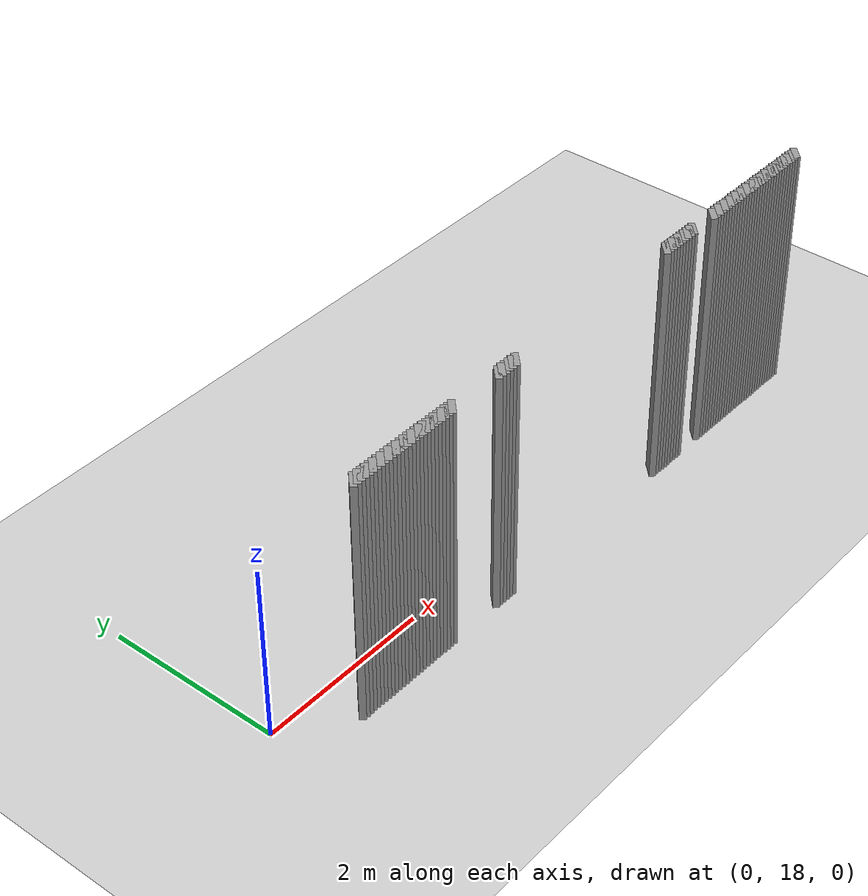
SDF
<sdf version="1.5">
 <world name="default">
  <include><uri>model://ground_plane</uri></include>
  <include><uri>model://sun</uri></include>
  <model name="grey_wall_1">
   <static>1</static>
   <link name="link">
    <pose>0.75 17.55  1.4 0 0 -0.7853981633974194</pose>
    <collision name="collision">
     <geometry><box><size>0.07071067811865277 .2  2.8</size></box></geometry>
    </collision>
    <visual name="visual">
     <cast_shadows>0</cast_shadows>
     <geometry><box><size>0.07071067811865277 .2  2.8</size></box></geometry>
     <material>
      <script>
       <uri>model://grey_wall/materials/scripts</uri>
       <uri>model://grey_wall/materials/textures</uri>
       <name>vrc/grey_wall</name>
      </script>
     </material>
    </visual>
   </link>
  </model>
  <model name="grey_wall_2">
   <static>1</static>
   <link name="link">
    <pose>0.8 17.55  1.4 0 0 -0.7853981633974194</pose>
    <collision name="collision">
     <geometry><box><size>0.07071067811865277 .2  2.8</size></box></geometry>
    </collision>
    <visual name="visual">
     <cast_shadows>0</cast_shadows>
     <geometry><box><size>0.07071067811865277 .2  2.8</size></box></geometry>
     <material>
      <script>
       <uri>model://grey_wall/materials/scripts</uri>
       <uri>model://grey_wall/materials/textures</uri>
       <name>vrc/grey_wall</name>
      </script>
     </material>
    </visual>
   </link>
  </model>
  <model name="grey_wall_3">
   <static>1</static>
   <link name="link">
    <pose>0.8500000000000001 17.55  1.4 0 0 -0.7853981633974194</pose>
    <collision name="collision">
     <geometry><box><size>0.07071067811865277 .2  2.8</size></box></geometry>
    </collision>
    <visual name="visual">
     <cast_shadows>0</cast_shadows>
     <geometry><box><size>0.07071067811865277 .2  2.8</size></box></geometry>
     <material>
      <script>
       <uri>model://grey_wall/materials/scripts</uri>
       <uri>model://grey_wall/materials/textures</uri>
       <name>vrc/grey_wall</name>
      </script>
     </material>
    </visual>
   </link>
  </model>
  <model name="grey_wall_4">
   <static>1</static>
   <link name="link">
    <pose>0.9 17.55  1.4 0 0 -0.7853981633974194</pose>
    <collision name="collision">
     <geometry><box><size>0.07071067811865277 .2  2.8</size></box></geometry>
    </collision>
    <visual name="visual">
     <cast_shadows>0</cast_shadows>
     <geometry><box><size>0.07071067811865277 .2  2.8</size></box></geometry>
     <material>
      <script>
       <uri>model://grey_wall/materials/scripts</uri>
       <uri>model://grey_wall/materials/textures</uri>
       <name>vrc/grey_wall</name>
      </script>
     </material>
    </visual>
   </link>
  </model>
  <model name="grey_wall_5">
   <static>1</static>
   <link name="link">
    <pose>0.9500000000000001 17.55  1.4 0 0 -0.7853981633974194</pose>
    <collision name="collision">
     <geometry><box><size>0.07071067811865277 .2  2.8</size></box></geometry>
    </collision>
    <visual name="visual">
     <cast_shadows>0</cast_shadows>
     <geometry><box><size>0.07071067811865277 .2  2.8</size></box></geometry>
     <material>
      <script>
       <uri>model://grey_wall/materials/scripts</uri>
       <uri>model://grey_wall/materials/textures</uri>
       <name>vrc/grey_wall</name>
      </script>
     </material>
    </visual>
   </link>
  </model>
  <model name="grey_wall_6">
   <static>1</static>
   <link name="link">
    <pose>1.0 17.55  1.4 0 0 -0.7853981633974205</pose>
    <collision name="collision">
     <geometry><box><size>0.0707106781186527 .2  2.8</size></box></geometry>
    </collision>
    <visual name="visual">
     <cast_shadows>0</cast_shadows>
     <geometry><box><size>0.0707106781186527 .2  2.8</size></box></geometry>
     <material>
      <script>
       <uri>model://grey_wall/materials/scripts</uri>
       <uri>model://grey_wall/materials/textures</uri>
       <name>vrc/grey_wall</name>
      </script>
     </material>
    </visual>
   </link>
  </model>
  <model name="grey_wall_7">
   <static>1</static>
   <link name="link">
    <pose>1.05 17.55  1.4 0 0 -0.7853981633974216</pose>
    <collision name="collision">
     <geometry><box><size>0.07071067811865261 .2  2.8</size></box></geometry>
    </collision>
    <visual name="visual">
     <cast_shadows>0</cast_shadows>
     <geometry><box><size>0.07071067811865261 .2  2.8</size></box></geometry>
     <material>
      <script>
       <uri>model://grey_wall/materials/scripts</uri>
       <uri>model://grey_wall/materials/textures</uri>
       <name>vrc/grey_wall</name>
      </script>
     </material>
    </visual>
   </link>
  </model>
  <model name="grey_wall_8">
   <static>1</static>
   <link name="link">
    <pose>1.1 17.55  1.4 0 0 -0.7853981633974216</pose>
    <collision name="collision">
     <geometry><box><size>0.07071067811865261 .2  2.8</size></box></geometry>
    </collision>
    <visual name="visual">
     <cast_shadows>0</cast_shadows>
     <geometry><box><size>0.07071067811865261 .2  2.8</size></box></geometry>
     <material>
      <script>
       <uri>model://grey_wall/materials/scripts</uri>
       <uri>model://grey_wall/materials/textures</uri>
       <name>vrc/grey_wall</name>
      </script>
     </material>
    </visual>
   </link>
  </model>
  <model name="grey_wall_9">
   <static>1</static>
   <link name="link">
    <pose>1.1500000000000001 17.55  1.4 0 0 -0.7853981633974216</pose>
    <collision name="collision">
     <geometry><box><size>0.07071067811865261 .2  2.8</size></box></geometry>
    </collision>
    <visual name="visual">
     <cast_shadows>0</cast_shadows>
     <geometry><box><size>0.07071067811865261 .2  2.8</size></box></geometry>
     <material>
      <script>
       <uri>model://grey_wall/materials/scripts</uri>
       <uri>model://grey_wall/materials/textures</uri>
       <name>vrc/grey_wall</name>
      </script>
     </material>
    </visual>
   </link>
  </model>
  <model name="grey_wall_10">
   <static>1</static>
   <link name="link">
    <pose>1.2000000000000002 17.55  1.4 0 0 -0.7853981633974216</pose>
    <collision name="collision">
     <geometry><box><size>0.07071067811865261 .2  2.8</size></box></geometry>
    </collision>
    <visual name="visual">
     <cast_shadows>0</cast_shadows>
     <geometry><box><size>0.07071067811865261 .2  2.8</size></box></geometry>
     <material>
      <script>
       <uri>model://grey_wall/materials/scripts</uri>
       <uri>model://grey_wall/materials/textures</uri>
       <name>vrc/grey_wall</name>
      </script>
     </material>
    </visual>
   </link>
  </model>
  <model name="grey_wall_11">
   <static>1</static>
   <link name="link">
    <pose>1.25 17.55  1.4 0 0 -0.7853981633974216</pose>
    <collision name="collision">
     <geometry><box><size>0.07071067811865261 .2  2.8</size></box></geometry>
    </collision>
    <visual name="visual">
     <cast_shadows>0</cast_shadows>
     <geometry><box><size>0.07071067811865261 .2  2.8</size></box></geometry>
     <material>
      <script>
       <uri>model://grey_wall/materials/scripts</uri>
       <uri>model://grey_wall/materials/textures</uri>
       <name>vrc/grey_wall</name>
      </script>
     </material>
    </visual>
   </link>
  </model>
  <model name="grey_wall_12">
   <static>1</static>
   <link name="link">
    <pose>1.3 17.55  1.4 0 0 -0.7853981633974216</pose>
    <collision name="collision">
     <geometry><box><size>0.07071067811865261 .2  2.8</size></box></geometry>
    </collision>
    <visual name="visual">
     <cast_shadows>0</cast_shadows>
     <geometry><box><size>0.07071067811865261 .2  2.8</size></box></geometry>
     <material>
      <script>
       <uri>model://grey_wall/materials/scripts</uri>
       <uri>model://grey_wall/materials/textures</uri>
       <name>vrc/grey_wall</name>
      </script>
     </material>
    </visual>
   </link>
  </model>
  <model name="grey_wall_13">
   <static>1</static>
   <link name="link">
    <pose>1.35 17.55  1.4 0 0 -0.7853981633974216</pose>
    <collision name="collision">
     <geometry><box><size>0.07071067811865261 .2  2.8</size></box></geometry>
    </collision>
    <visual name="visual">
     <cast_shadows>0</cast_shadows>
     <geometry><box><size>0.07071067811865261 .2  2.8</size></box></geometry>
     <material>
      <script>
       <uri>model://grey_wall/materials/scripts</uri>
       <uri>model://grey_wall/materials/textures</uri>
       <name>vrc/grey_wall</name>
      </script>
     </material>
    </visual>
   </link>
  </model>
  <model name="grey_wall_14">
   <static>1</static>
   <link name="link">
    <pose>1.4000000000000001 17.55  1.4 0 0 -0.7853981633974216</pose>
    <collision name="collision">
     <geometry><box><size>0.07071067811865261 .2  2.8</size></box></geometry>
    </collision>
    <visual name="visual">
     <cast_shadows>0</cast_shadows>
     <geometry><box><size>0.07071067811865261 .2  2.8</size></box></geometry>
     <material>
      <script>
       <uri>model://grey_wall/materials/scripts</uri>
       <uri>model://grey_wall/materials/textures</uri>
       <name>vrc/grey_wall</name>
      </script>
     </material>
    </visual>
   </link>
  </model>
  <model name="grey_wall_15">
   <static>1</static>
   <link name="link">
    <pose>1.4500000000000002 17.55  1.4 0 0 -0.7853981633974216</pose>
    <collision name="collision">
     <geometry><box><size>0.07071067811865261 .2  2.8</size></box></geometry>
    </collision>
    <visual name="visual">
     <cast_shadows>0</cast_shadows>
     <geometry><box><size>0.07071067811865261 .2  2.8</size></box></geometry>
     <material>
      <script>
       <uri>model://grey_wall/materials/scripts</uri>
       <uri>model://grey_wall/materials/textures</uri>
       <name>vrc/grey_wall</name>
      </script>
     </material>
    </visual>
   </link>
  </model>
  <model name="grey_wall_16">
   <static>1</static>
   <link name="link">
    <pose>1.5 17.55  1.4 0 0 -0.7853981633974216</pose>
    <collision name="collision">
     <geometry><box><size>0.07071067811865261 .2  2.8</size></box></geometry>
    </collision>
    <visual name="visual">
     <cast_shadows>0</cast_shadows>
     <geometry><box><size>0.07071067811865261 .2  2.8</size></box></geometry>
     <material>
      <script>
       <uri>model://grey_wall/materials/scripts</uri>
       <uri>model://grey_wall/materials/textures</uri>
       <name>vrc/grey_wall</name>
      </script>
     </material>
    </visual>
   </link>
  </model>
  <model name="grey_wall_17">
   <static>1</static>
   <link name="link">
    <pose>1.55 17.55  1.4 0 0 -0.7853981633974216</pose>
    <collision name="collision">
     <geometry><box><size>0.07071067811865261 .2  2.8</size></box></geometry>
    </collision>
    <visual name="visual">
     <cast_shadows>0</cast_shadows>
     <geometry><box><size>0.07071067811865261 .2  2.8</size></box></geometry>
     <material>
      <script>
       <uri>model://grey_wall/materials/scripts</uri>
       <uri>model://grey_wall/materials/textures</uri>
       <name>vrc/grey_wall</name>
      </script>
     </material>
    </visual>
   </link>
  </model>
  <model name="grey_wall_18">
   <static>1</static>
   <link name="link">
    <pose>1.6 17.55  1.4 0 0 -0.7853981633974216</pose>
    <collision name="collision">
     <geometry><box><size>0.07071067811865261 .2  2.8</size></box></geometry>
    </collision>
    <visual name="visual">
     <cast_shadows>0</cast_shadows>
     <geometry><box><size>0.07071067811865261 .2  2.8</size></box></geometry>
     <material>
      <script>
       <uri>model://grey_wall/materials/scripts</uri>
       <uri>model://grey_wall/materials/textures</uri>
       <name>vrc/grey_wall</name>
      </script>
     </material>
    </visual>
   </link>
  </model>
  <model name="grey_wall_19">
   <static>1</static>
   <link name="link">
    <pose>1.6500000000000001 17.55  1.4 0 0 -0.7853981633974216</pose>
    <collision name="collision">
     <geometry><box><size>0.07071067811865261 .2  2.8</size></box></geometry>
    </collision>
    <visual name="visual">
     <cast_shadows>0</cast_shadows>
     <geometry><box><size>0.07071067811865261 .2  2.8</size></box></geometry>
     <material>
      <script>
       <uri>model://grey_wall/materials/scripts</uri>
       <uri>model://grey_wall/materials/textures</uri>
       <name>vrc/grey_wall</name>
      </script>
     </material>
    </visual>
   </link>
  </model>
  <model name="grey_wall_20">
   <static>1</static>
   <link name="link">
    <pose>1.7000000000000002 17.55  1.4 0 0 -0.7853981633974216</pose>
    <collision name="collision">
     <geometry><box><size>0.07071067811865261 .2  2.8</size></box></geometry>
    </collision>
    <visual name="visual">
     <cast_shadows>0</cast_shadows>
     <geometry><box><size>0.07071067811865261 .2  2.8</size></box></geometry>
     <material>
      <script>
       <uri>model://grey_wall/materials/scripts</uri>
       <uri>model://grey_wall/materials/textures</uri>
       <name>vrc/grey_wall</name>
      </script>
     </material>
    </visual>
   </link>
  </model>
  <model name="grey_wall_21">
   <static>1</static>
   <link name="link">
    <pose>1.75 17.55  1.4 0 0 -0.7853981633974216</pose>
    <collision name="collision">
     <geometry><box><size>0.07071067811865261 .2  2.8</size></box></geometry>
    </collision>
    <visual name="visual">
     <cast_shadows>0</cast_shadows>
     <geometry><box><size>0.07071067811865261 .2  2.8</size></box></geometry>
     <material>
      <script>
       <uri>model://grey_wall/materials/scripts</uri>
       <uri>model://grey_wall/materials/textures</uri>
       <name>vrc/grey_wall</name>
      </script>
     </material>
    </visual>
   </link>
  </model>
  <model name="grey_wall_22">
   <static>1</static>
   <link name="link">
    <pose>1.8 17.55  1.4 0 0 -0.7853981633974216</pose>
    <collision name="collision">
     <geometry><box><size>0.07071067811865261 .2  2.8</size></box></geometry>
    </collision>
    <visual name="visual">
     <cast_shadows>0</cast_shadows>
     <geometry><box><size>0.07071067811865261 .2  2.8</size></box></geometry>
     <material>
      <script>
       <uri>model://grey_wall/materials/scripts</uri>
       <uri>model://grey_wall/materials/textures</uri>
       <name>vrc/grey_wall</name>
      </script>
     </material>
    </visual>
   </link>
  </model>
  <model name="grey_wall_23">
   <static>1</static>
   <link name="link">
    <pose>1.85 17.55  1.4 0 0 -0.7853981633974216</pose>
    <collision name="collision">
     <geometry><box><size>0.07071067811865261 .2  2.8</size></box></geometry>
    </collision>
    <visual name="visual">
     <cast_shadows>0</cast_shadows>
     <geometry><box><size>0.07071067811865261 .2  2.8</size></box></geometry>
     <material>
      <script>
       <uri>model://grey_wall/materials/scripts</uri>
       <uri>model://grey_wall/materials/textures</uri>
       <name>vrc/grey_wall</name>
      </script>
     </material>
    </visual>
   </link>
  </model>
  <model name="grey_wall_24">
   <static>1</static>
   <link name="link">
    <pose>1.9000000000000001 17.55  1.4 0 0 -0.7853981633974216</pose>
    <collision name="collision">
     <geometry><box><size>0.07071067811865261 .2  2.8</size></box></geometry>
    </collision>
    <visual name="visual">
     <cast_shadows>0</cast_shadows>
     <geometry><box><size>0.07071067811865261 .2  2.8</size></box></geometry>
     <material>
      <script>
       <uri>model://grey_wall/materials/scripts</uri>
       <uri>model://grey_wall/materials/textures</uri>
       <name>vrc/grey_wall</name>
      </script>
     </material>
    </visual>
   </link>
  </model>
  <model name="grey_wall_25">
   <static>1</static>
   <link name="link">
    <pose>1.9500000000000002 17.55  1.4 0 0 -0.7853981633974216</pose>
    <collision name="collision">
     <geometry><box><size>0.07071067811865261 .2  2.8</size></box></geometry>
    </collision>
    <visual name="visual">
     <cast_shadows>0</cast_shadows>
     <geometry><box><size>0.07071067811865261 .2  2.8</size></box></geometry>
     <material>
      <script>
       <uri>model://grey_wall/materials/scripts</uri>
       <uri>model://grey_wall/materials/textures</uri>
       <name>vrc/grey_wall</name>
      </script>
     </material>
    </visual>
   </link>
  </model>
  <model name="grey_wall_26">
   <static>1</static>
   <link name="link">
    <pose>2.0 17.55  1.4 0 0 -0.7853981633974216</pose>
    <collision name="collision">
     <geometry><box><size>0.07071067811865261 .2  2.8</size></box></geometry>
    </collision>
    <visual name="visual">
     <cast_shadows>0</cast_shadows>
     <geometry><box><size>0.07071067811865261 .2  2.8</size></box></geometry>
     <material>
      <script>
       <uri>model://grey_wall/materials/scripts</uri>
       <uri>model://grey_wall/materials/textures</uri>
       <name>vrc/grey_wall</name>
      </script>
     </material>
    </visual>
   </link>
  </model>
  <model name="grey_wall_27">
   <static>1</static>
   <link name="link">
    <pose>2.0500000000000003 17.55  1.4 0 0 -0.7853981633974216</pose>
    <collision name="collision">
     <geometry><box><size>0.07071067811865261 .2  2.8</size></box></geometry>
    </collision>
    <visual name="visual">
     <cast_shadows>0</cast_shadows>
     <geometry><box><size>0.07071067811865261 .2  2.8</size></box></geometry>
     <material>
      <script>
       <uri>model://grey_wall/materials/scripts</uri>
       <uri>model://grey_wall/materials/textures</uri>
       <name>vrc/grey_wall</name>
      </script>
     </material>
    </visual>
   </link>
  </model>
  <model name="grey_wall_28">
   <static>1</static>
   <link name="link">
    <pose>2.7 17.55  1.4 0 0 -0.7853981633974216</pose>
    <collision name="collision">
     <geometry><box><size>0.07071067811865261 .2  2.8</size></box></geometry>
    </collision>
    <visual name="visual">
     <cast_shadows>0</cast_shadows>
     <geometry><box><size>0.07071067811865261 .2  2.8</size></box></geometry>
     <material>
      <script>
       <uri>model://grey_wall/materials/scripts</uri>
       <uri>model://grey_wall/materials/textures</uri>
       <name>vrc/grey_wall</name>
      </script>
     </material>
    </visual>
   </link>
  </model>
  <model name="grey_wall_29">
   <static>1</static>
   <link name="link">
    <pose>2.75 17.55  1.4 0 0 -0.7853981633974216</pose>
    <collision name="collision">
     <geometry><box><size>0.07071067811865261 .2  2.8</size></box></geometry>
    </collision>
    <visual name="visual">
     <cast_shadows>0</cast_shadows>
     <geometry><box><size>0.07071067811865261 .2  2.8</size></box></geometry>
     <material>
      <script>
       <uri>model://grey_wall/materials/scripts</uri>
       <uri>model://grey_wall/materials/textures</uri>
       <name>vrc/grey_wall</name>
      </script>
     </material>
    </visual>
   </link>
  </model>
  <model name="grey_wall_30">
   <static>1</static>
   <link name="link">
    <pose>2.8000000000000003 17.55  1.4 0 0 -0.7853981633974216</pose>
    <collision name="collision">
     <geometry><box><size>0.07071067811865261 .2  2.8</size></box></geometry>
    </collision>
    <visual name="visual">
     <cast_shadows>0</cast_shadows>
     <geometry><box><size>0.07071067811865261 .2  2.8</size></box></geometry>
     <material>
      <script>
       <uri>model://grey_wall/materials/scripts</uri>
       <uri>model://grey_wall/materials/textures</uri>
       <name>vrc/grey_wall</name>
      </script>
     </material>
    </visual>
   </link>
  </model>
  <model name="grey_wall_31">
   <static>1</static>
   <link name="link">
    <pose>2.85 17.55  1.4 0 0 -0.7853981633974216</pose>
    <collision name="collision">
     <geometry><box><size>0.07071067811865261 .2  2.8</size></box></geometry>
    </collision>
    <visual name="visual">
     <cast_shadows>0</cast_shadows>
     <geometry><box><size>0.07071067811865261 .2  2.8</size></box></geometry>
     <material>
      <script>
       <uri>model://grey_wall/materials/scripts</uri>
       <uri>model://grey_wall/materials/textures</uri>
       <name>vrc/grey_wall</name>
      </script>
     </material>
    </visual>
   </link>
  </model>
  <model name="grey_wall_32">
   <static>1</static>
   <link name="link">
    <pose>2.9000000000000004 17.55  1.4 0 0 -0.7853981633974216</pose>
    <collision name="collision">
     <geometry><box><size>0.07071067811865261 .2  2.8</size></box></geometry>
    </collision>
    <visual name="visual">
     <cast_shadows>0</cast_shadows>
     <geometry><box><size>0.07071067811865261 .2  2.8</size></box></geometry>
     <material>
      <script>
       <uri>model://grey_wall/materials/scripts</uri>
       <uri>model://grey_wall/materials/textures</uri>
       <name>vrc/grey_wall</name>
      </script>
     </material>
    </visual>
   </link>
  </model>
  <model name="grey_wall_33">
   <static>1</static>
   <link name="link">
    <pose>2.95 17.55  1.4 0 0 -0.7853981633974216</pose>
    <collision name="collision">
     <geometry><box><size>0.07071067811865261 .2  2.8</size></box></geometry>
    </collision>
    <visual name="visual">
     <cast_shadows>0</cast_shadows>
     <geometry><box><size>0.07071067811865261 .2  2.8</size></box></geometry>
     <material>
      <script>
       <uri>model://grey_wall/materials/scripts</uri>
       <uri>model://grey_wall/materials/textures</uri>
       <name>vrc/grey_wall</name>
      </script>
     </material>
    </visual>
   </link>
  </model>
  <model name="grey_wall_34">
   <static>1</static>
   <link name="link">
    <pose>5.300000000000001 17.55  1.4 0 0 -0.7853981633974128</pose>
    <collision name="collision">
     <geometry><box><size>0.07071067811865325 .2  2.8</size></box></geometry>
    </collision>
    <visual name="visual">
     <cast_shadows>0</cast_shadows>
     <geometry><box><size>0.07071067811865325 .2  2.8</size></box></geometry>
     <material>
      <script>
       <uri>model://grey_wall/materials/scripts</uri>
       <uri>model://grey_wall/materials/textures</uri>
       <name>vrc/grey_wall</name>
      </script>
     </material>
    </visual>
   </link>
  </model>
  <model name="grey_wall_35">
   <static>1</static>
   <link name="link">
    <pose>5.3500000000000005 17.55  1.4 0 0 -0.7853981633974128</pose>
    <collision name="collision">
     <geometry><box><size>0.07071067811865325 .2  2.8</size></box></geometry>
    </collision>
    <visual name="visual">
     <cast_shadows>0</cast_shadows>
     <geometry><box><size>0.07071067811865325 .2  2.8</size></box></geometry>
     <material>
      <script>
       <uri>model://grey_wall/materials/scripts</uri>
       <uri>model://grey_wall/materials/textures</uri>
       <name>vrc/grey_wall</name>
      </script>
     </material>
    </visual>
   </link>
  </model>
  <model name="grey_wall_36">
   <static>1</static>
   <link name="link">
    <pose>5.4 17.55  1.4 0 0 -0.7853981633974128</pose>
    <collision name="collision">
     <geometry><box><size>0.07071067811865325 .2  2.8</size></box></geometry>
    </collision>
    <visual name="visual">
     <cast_shadows>0</cast_shadows>
     <geometry><box><size>0.07071067811865325 .2  2.8</size></box></geometry>
     <material>
      <script>
       <uri>model://grey_wall/materials/scripts</uri>
       <uri>model://grey_wall/materials/textures</uri>
       <name>vrc/grey_wall</name>
      </script>
     </material>
    </visual>
   </link>
  </model>
  <model name="grey_wall_37">
   <static>1</static>
   <link name="link">
    <pose>5.45 17.55  1.4 0 0 -0.7853981633974128</pose>
    <collision name="collision">
     <geometry><box><size>0.07071067811865325 .2  2.8</size></box></geometry>
    </collision>
    <visual name="visual">
     <cast_shadows>0</cast_shadows>
     <geometry><box><size>0.07071067811865325 .2  2.8</size></box></geometry>
     <material>
      <script>
       <uri>model://grey_wall/materials/scripts</uri>
       <uri>model://grey_wall/materials/textures</uri>
       <name>vrc/grey_wall</name>
      </script>
     </material>
    </visual>
   </link>
  </model>
  <model name="grey_wall_38">
   <static>1</static>
   <link name="link">
    <pose>5.5 17.55  1.4 0 0 -0.7853981633974128</pose>
    <collision name="collision">
     <geometry><box><size>0.07071067811865325 .2  2.8</size></box></geometry>
    </collision>
    <visual name="visual">
     <cast_shadows>0</cast_shadows>
     <geometry><box><size>0.07071067811865325 .2  2.8</size></box></geometry>
     <material>
      <script>
       <uri>model://grey_wall/materials/scripts</uri>
       <uri>model://grey_wall/materials/textures</uri>
       <name>vrc/grey_wall</name>
      </script>
     </material>
    </visual>
   </link>
  </model>
  <model name="grey_wall_39">
   <static>1</static>
   <link name="link">
    <pose>5.550000000000001 17.55  1.4 0 0 -0.7853981633974128</pose>
    <collision name="collision">
     <geometry><box><size>0.07071067811865325 .2  2.8</size></box></geometry>
    </collision>
    <visual name="visual">
     <cast_shadows>0</cast_shadows>
     <geometry><box><size>0.07071067811865325 .2  2.8</size></box></geometry>
     <material>
      <script>
       <uri>model://grey_wall/materials/scripts</uri>
       <uri>model://grey_wall/materials/textures</uri>
       <name>vrc/grey_wall</name>
      </script>
     </material>
    </visual>
   </link>
  </model>
  <model name="grey_wall_40">
   <static>1</static>
   <link name="link">
    <pose>5.6000000000000005 17.55  1.4 0 0 -0.7853981633974128</pose>
    <collision name="collision">
     <geometry><box><size>0.07071067811865325 .2  2.8</size></box></geometry>
    </collision>
    <visual name="visual">
     <cast_shadows>0</cast_shadows>
     <geometry><box><size>0.07071067811865325 .2  2.8</size></box></geometry>
     <material>
      <script>
       <uri>model://grey_wall/materials/scripts</uri>
       <uri>model://grey_wall/materials/textures</uri>
       <name>vrc/grey_wall</name>
      </script>
     </material>
    </visual>
   </link>
  </model>
  <model name="grey_wall_41">
   <static>1</static>
   <link name="link">
    <pose>5.65 17.55  1.4 0 0 -0.7853981633974128</pose>
    <collision name="collision">
     <geometry><box><size>0.07071067811865325 .2  2.8</size></box></geometry>
    </collision>
    <visual name="visual">
     <cast_shadows>0</cast_shadows>
     <geometry><box><size>0.07071067811865325 .2  2.8</size></box></geometry>
     <material>
      <script>
       <uri>model://grey_wall/materials/scripts</uri>
       <uri>model://grey_wall/materials/textures</uri>
       <name>vrc/grey_wall</name>
      </script>
     </material>
    </visual>
   </link>
  </model>
  <model name="grey_wall_42">
   <static>1</static>
   <link name="link">
    <pose>5.7 17.55  1.4 0 0 -0.7853981633974128</pose>
    <collision name="collision">
     <geometry><box><size>0.07071067811865325 .2  2.8</size></box></geometry>
    </collision>
    <visual name="visual">
     <cast_shadows>0</cast_shadows>
     <geometry><box><size>0.07071067811865325 .2  2.8</size></box></geometry>
     <material>
      <script>
       <uri>model://grey_wall/materials/scripts</uri>
       <uri>model://grey_wall/materials/textures</uri>
       <name>vrc/grey_wall</name>
      </script>
     </material>
    </visual>
   </link>
  </model>
  <model name="grey_wall_43">
   <static>1</static>
   <link name="link">
    <pose>5.75 17.55  1.4 0 0 -0.7853981633974128</pose>
    <collision name="collision">
     <geometry><box><size>0.07071067811865325 .2  2.8</size></box></geometry>
    </collision>
    <visual name="visual">
     <cast_shadows>0</cast_shadows>
     <geometry><box><size>0.07071067811865325 .2  2.8</size></box></geometry>
     <material>
      <script>
       <uri>model://grey_wall/materials/scripts</uri>
       <uri>model://grey_wall/materials/textures</uri>
       <name>vrc/grey_wall</name>
      </script>
     </material>
    </visual>
   </link>
  </model>
  <model name="grey_wall_44">
   <static>1</static>
   <link name="link">
    <pose>6.1000000000000005 17.55  1.4 0 0 -0.7853981633974128</pose>
    <collision name="collision">
     <geometry><box><size>0.07071067811865325 .2  2.8</size></box></geometry>
    </collision>
    <visual name="visual">
     <cast_shadows>0</cast_shadows>
     <geometry><box><size>0.07071067811865325 .2  2.8</size></box></geometry>
     <material>
      <script>
       <uri>model://grey_wall/materials/scripts</uri>
       <uri>model://grey_wall/materials/textures</uri>
       <name>vrc/grey_wall</name>
      </script>
     </material>
    </visual>
   </link>
  </model>
  <model name="grey_wall_45">
   <static>1</static>
   <link name="link">
    <pose>6.15 17.55  1.4 0 0 -0.7853981633974128</pose>
    <collision name="collision">
     <geometry><box><size>0.07071067811865325 .2  2.8</size></box></geometry>
    </collision>
    <visual name="visual">
     <cast_shadows>0</cast_shadows>
     <geometry><box><size>0.07071067811865325 .2  2.8</size></box></geometry>
     <material>
      <script>
       <uri>model://grey_wall/materials/scripts</uri>
       <uri>model://grey_wall/materials/textures</uri>
       <name>vrc/grey_wall</name>
      </script>
     </material>
    </visual>
   </link>
  </model>
  <model name="grey_wall_46">
   <static>1</static>
   <link name="link">
    <pose>6.2 17.55  1.4 0 0 -0.7853981633974128</pose>
    <collision name="collision">
     <geometry><box><size>0.07071067811865325 .2  2.8</size></box></geometry>
    </collision>
    <visual name="visual">
     <cast_shadows>0</cast_shadows>
     <geometry><box><size>0.07071067811865325 .2  2.8</size></box></geometry>
     <material>
      <script>
       <uri>model://grey_wall/materials/scripts</uri>
       <uri>model://grey_wall/materials/textures</uri>
       <name>vrc/grey_wall</name>
      </script>
     </material>
    </visual>
   </link>
  </model>
  <model name="grey_wall_47">
   <static>1</static>
   <link name="link">
    <pose>6.25 17.55  1.4 0 0 -0.7853981633974128</pose>
    <collision name="collision">
     <geometry><box><size>0.07071067811865325 .2  2.8</size></box></geometry>
    </collision>
    <visual name="visual">
     <cast_shadows>0</cast_shadows>
     <geometry><box><size>0.07071067811865325 .2  2.8</size></box></geometry>
     <material>
      <script>
       <uri>model://grey_wall/materials/scripts</uri>
       <uri>model://grey_wall/materials/textures</uri>
       <name>vrc/grey_wall</name>
      </script>
     </material>
    </visual>
   </link>
  </model>
  <model name="grey_wall_48">
   <static>1</static>
   <link name="link">
    <pose>6.300000000000001 17.55  1.4 0 0 -0.7853981633974128</pose>
    <collision name="collision">
     <geometry><box><size>0.07071067811865325 .2  2.8</size></box></geometry>
    </collision>
    <visual name="visual">
     <cast_shadows>0</cast_shadows>
     <geometry><box><size>0.07071067811865325 .2  2.8</size></box></geometry>
     <material>
      <script>
       <uri>model://grey_wall/materials/scripts</uri>
       <uri>model://grey_wall/materials/textures</uri>
       <name>vrc/grey_wall</name>
      </script>
     </material>
    </visual>
   </link>
  </model>
  <model name="grey_wall_49">
   <static>1</static>
   <link name="link">
    <pose>6.3500000000000005 17.55  1.4 0 0 -0.7853981633974128</pose>
    <collision name="collision">
     <geometry><box><size>0.07071067811865325 .2  2.8</size></box></geometry>
    </collision>
    <visual name="visual">
     <cast_shadows>0</cast_shadows>
     <geometry><box><size>0.07071067811865325 .2  2.8</size></box></geometry>
     <material>
      <script>
       <uri>model://grey_wall/materials/scripts</uri>
       <uri>model://grey_wall/materials/textures</uri>
       <name>vrc/grey_wall</name>
      </script>
     </material>
    </visual>
   </link>
  </model>
  <model name="grey_wall_50">
   <static>1</static>
   <link name="link">
    <pose>6.4 17.55  1.4 0 0 -0.7853981633974128</pose>
    <collision name="collision">
     <geometry><box><size>0.07071067811865325 .2  2.8</size></box></geometry>
    </collision>
    <visual name="visual">
     <cast_shadows>0</cast_shadows>
     <geometry><box><size>0.07071067811865325 .2  2.8</size></box></geometry>
     <material>
      <script>
       <uri>model://grey_wall/materials/scripts</uri>
       <uri>model://grey_wall/materials/textures</uri>
       <name>vrc/grey_wall</name>
      </script>
     </material>
    </visual>
   </link>
  </model>
  <model name="grey_wall_51">
   <static>1</static>
   <link name="link">
    <pose>6.45 17.55  1.4 0 0 -0.7853981633974128</pose>
    <collision name="collision">
     <geometry><box><size>0.07071067811865325 .2  2.8</size></box></geometry>
    </collision>
    <visual name="visual">
     <cast_shadows>0</cast_shadows>
     <geometry><box><size>0.07071067811865325 .2  2.8</size></box></geometry>
     <material>
      <script>
       <uri>model://grey_wall/materials/scripts</uri>
       <uri>model://grey_wall/materials/textures</uri>
       <name>vrc/grey_wall</name>
      </script>
     </material>
    </visual>
   </link>
  </model>
  <model name="grey_wall_52">
   <static>1</static>
   <link name="link">
    <pose>6.5 17.55  1.4 0 0 -0.7853981633974128</pose>
    <collision name="collision">
     <geometry><box><size>0.07071067811865325 .2  2.8</size></box></geometry>
    </collision>
    <visual name="visual">
     <cast_shadows>0</cast_shadows>
     <geometry><box><size>0.07071067811865325 .2  2.8</size></box></geometry>
     <material>
      <script>
       <uri>model://grey_wall/materials/scripts</uri>
       <uri>model://grey_wall/materials/textures</uri>
       <name>vrc/grey_wall</name>
      </script>
     </material>
    </visual>
   </link>
  </model>
  <model name="grey_wall_53">
   <static>1</static>
   <link name="link">
    <pose>6.550000000000001 17.55  1.4 0 0 -0.7853981633974128</pose>
    <collision name="collision">
     <geometry><box><size>0.07071067811865325 .2  2.8</size></box></geometry>
    </collision>
    <visual name="visual">
     <cast_shadows>0</cast_shadows>
     <geometry><box><size>0.07071067811865325 .2  2.8</size></box></geometry>
     <material>
      <script>
       <uri>model://grey_wall/materials/scripts</uri>
       <uri>model://grey_wall/materials/textures</uri>
       <name>vrc/grey_wall</name>
      </script>
     </material>
    </visual>
   </link>
  </model>
  <model name="grey_wall_54">
   <static>1</static>
   <link name="link">
    <pose>6.6000000000000005 17.55  1.4 0 0 -0.7853981633974128</pose>
    <collision name="collision">
     <geometry><box><size>0.07071067811865325 .2  2.8</size></box></geometry>
    </collision>
    <visual name="visual">
     <cast_shadows>0</cast_shadows>
     <geometry><box><size>0.07071067811865325 .2  2.8</size></box></geometry>
     <material>
      <script>
       <uri>model://grey_wall/materials/scripts</uri>
       <uri>model://grey_wall/materials/textures</uri>
       <name>vrc/grey_wall</name>
      </script>
     </material>
    </visual>
   </link>
  </model>
  <model name="grey_wall_55">
   <static>1</static>
   <link name="link">
    <pose>6.65 17.55  1.4 0 0 -0.7853981633974128</pose>
    <collision name="collision">
     <geometry><box><size>0.07071067811865325 .2  2.8</size></box></geometry>
    </collision>
    <visual name="visual">
     <cast_shadows>0</cast_shadows>
     <geometry><box><size>0.07071067811865325 .2  2.8</size></box></geometry>
     <material>
      <script>
       <uri>model://grey_wall/materials/scripts</uri>
       <uri>model://grey_wall/materials/textures</uri>
       <name>vrc/grey_wall</name>
      </script>
     </material>
    </visual>
   </link>
  </model>
  <model name="grey_wall_56">
   <static>1</static>
   <link name="link">
    <pose>6.7 17.55  1.4 0 0 -0.7853981633974128</pose>
    <collision name="collision">
     <geometry><box><size>0.07071067811865325 .2  2.8</size></box></geometry>
    </collision>
    <visual name="visual">
     <cast_shadows>0</cast_shadows>
     <geometry><box><size>0.07071067811865325 .2  2.8</size></box></geometry>
     <material>
      <script>
       <uri>model://grey_wall/materials/scripts</uri>
       <uri>model://grey_wall/materials/textures</uri>
       <name>vrc/grey_wall</name>
      </script>
     </material>
    </visual>
   </link>
  </model>
  <model name="grey_wall_57">
   <static>1</static>
   <link name="link">
    <pose>6.75 17.55  1.4 0 0 -0.7853981633974128</pose>
    <collision name="collision">
     <geometry><box><size>0.07071067811865325 .2  2.8</size></box></geometry>
    </collision>
    <visual name="visual">
     <cast_shadows>0</cast_shadows>
     <geometry><box><size>0.07071067811865325 .2  2.8</size></box></geometry>
     <material>
      <script>
       <uri>model://grey_wall/materials/scripts</uri>
       <uri>model://grey_wall/materials/textures</uri>
       <name>vrc/grey_wall</name>
      </script>
     </material>
    </visual>
   </link>
  </model>
  <model name="grey_wall_58">
   <static>1</static>
   <link name="link">
    <pose>6.800000000000001 17.55  1.4 0 0 -0.7853981633974128</pose>
    <collision name="collision">
     <geometry><box><size>0.07071067811865325 .2  2.8</size></box></geometry>
    </collision>
    <visual name="visual">
     <cast_shadows>0</cast_shadows>
     <geometry><box><size>0.07071067811865325 .2  2.8</size></box></geometry>
     <material>
      <script>
       <uri>model://grey_wall/materials/scripts</uri>
       <uri>model://grey_wall/materials/textures</uri>
       <name>vrc/grey_wall</name>
      </script>
     </material>
    </visual>
   </link>
  </model>
  <model name="grey_wall_59">
   <static>1</static>
   <link name="link">
    <pose>6.8500000000000005 17.55  1.4 0 0 -0.7853981633974128</pose>
    <collision name="collision">
     <geometry><box><size>0.07071067811865325 .2  2.8</size></box></geometry>
    </collision>
    <visual name="visual">
     <cast_shadows>0</cast_shadows>
     <geometry><box><size>0.07071067811865325 .2  2.8</size></box></geometry>
     <material>
      <script>
       <uri>model://grey_wall/materials/scripts</uri>
       <uri>model://grey_wall/materials/textures</uri>
       <name>vrc/grey_wall</name>
      </script>
     </material>
    </visual>
   </link>
  </model>
  <model name="grey_wall_60">
   <static>1</static>
   <link name="link">
    <pose>6.9 17.55  1.4 0 0 -0.7853981633974128</pose>
    <collision name="collision">
     <geometry><box><size>0.07071067811865325 .2  2.8</size></box></geometry>
    </collision>
    <visual name="visual">
     <cast_shadows>0</cast_shadows>
     <geometry><box><size>0.07071067811865325 .2  2.8</size></box></geometry>
     <material>
      <script>
       <uri>model://grey_wall/materials/scripts</uri>
       <uri>model://grey_wall/materials/textures</uri>
       <name>vrc/grey_wall</name>
      </script>
     </material>
    </visual>
   </link>
  </model>
  <model name="grey_wall_61">
   <static>1</static>
   <link name="link">
    <pose>6.95 17.55  1.4 0 0 -0.7853981633974128</pose>
    <collision name="collision">
     <geometry><box><size>0.07071067811865325 .2  2.8</size></box></geometry>
    </collision>
    <visual name="visual">
     <cast_shadows>0</cast_shadows>
     <geometry><box><size>0.07071067811865325 .2  2.8</size></box></geometry>
     <material>
      <script>
       <uri>model://grey_wall/materials/scripts</uri>
       <uri>model://grey_wall/materials/textures</uri>
       <name>vrc/grey_wall</name>
      </script>
     </material>
    </visual>
   </link>
  </model>
  <model name="grey_wall_62">
   <static>1</static>
   <link name="link">
    <pose>7.0 17.55  1.4 0 0 -0.7853981633974128</pose>
    <collision name="collision">
     <geometry><box><size>0.07071067811865325 .2  2.8</size></box></geometry>
    </collision>
    <visual name="visual">
     <cast_shadows>0</cast_shadows>
     <geometry><box><size>0.07071067811865325 .2  2.8</size></box></geometry>
     <material>
      <script>
       <uri>model://grey_wall/materials/scripts</uri>
       <uri>model://grey_wall/materials/textures</uri>
       <name>vrc/grey_wall</name>
      </script>
     </material>
    </visual>
   </link>
  </model>
  <model name="grey_wall_63">
   <static>1</static>
   <link name="link">
    <pose>7.050000000000001 17.55  1.4 0 0 -0.7853981633974128</pose>
    <collision name="collision">
     <geometry><box><size>0.07071067811865325 .2  2.8</size></box></geometry>
    </collision>
    <visual name="visual">
     <cast_shadows>0</cast_shadows>
     <geometry><box><size>0.07071067811865325 .2  2.8</size></box></geometry>
     <material>
      <script>
       <uri>model://grey_wall/materials/scripts</uri>
       <uri>model://grey_wall/materials/textures</uri>
       <name>vrc/grey_wall</name>
      </script>
     </material>
    </visual>
   </link>
  </model>
  <model name="grey_wall_64">
   <static>1</static>
   <link name="link">
    <pose>7.1000000000000005 17.55  1.4 0 0 -0.7853981633974128</pose>
    <collision name="collision">
     <geometry><box><size>0.07071067811865325 .2  2.8</size></box></geometry>
    </collision>
    <visual name="visual">
     <cast_shadows>0</cast_shadows>
     <geometry><box><size>0.07071067811865325 .2  2.8</size></box></geometry>
     <material>
      <script>
       <uri>model://grey_wall/materials/scripts</uri>
       <uri>model://grey_wall/materials/textures</uri>
       <name>vrc/grey_wall</name>
      </script>
     </material>
    </visual>
   </link>
  </model>
  <model name="grey_wall_65">
   <static>1</static>
   <link name="link">
    <pose>7.15 17.55  1.4 0 0 -0.7853981633974128</pose>
    <collision name="collision">
     <geometry><box><size>0.07071067811865325 .2  2.8</size></box></geometry>
    </collision>
    <visual name="visual">
     <cast_shadows>0</cast_shadows>
     <geometry><box><size>0.07071067811865325 .2  2.8</size></box></geometry>
     <material>
      <script>
       <uri>model://grey_wall/materials/scripts</uri>
       <uri>model://grey_wall/materials/textures</uri>
       <name>vrc/grey_wall</name>
      </script>
     </material>
    </visual>
   </link>
  </model>
  <model name="grey_wall_66">
   <static>1</static>
   <link name="link">
    <pose>7.2 17.55  1.4 0 0 -0.7853981633974128</pose>
    <collision name="collision">
     <geometry><box><size>0.07071067811865325 .2  2.8</size></box></geometry>
    </collision>
    <visual name="visual">
     <cast_shadows>0</cast_shadows>
     <geometry><box><size>0.07071067811865325 .2  2.8</size></box></geometry>
     <material>
      <script>
       <uri>model://grey_wall/materials/scripts</uri>
       <uri>model://grey_wall/materials/textures</uri>
       <name>vrc/grey_wall</name>
      </script>
     </material>
    </visual>
   </link>
  </model>
  <model name="grey_wall_67">
   <static>1</static>
   <link name="link">
    <pose>7.25 17.55  1.4 0 0 -0.7853981633974128</pose>
    <collision name="collision">
     <geometry><box><size>0.07071067811865325 .2  2.8</size></box></geometry>
    </collision>
    <visual name="visual">
     <cast_shadows>0</cast_shadows>
     <geometry><box><size>0.07071067811865325 .2  2.8</size></box></geometry>
     <material>
      <script>
       <uri>model://grey_wall/materials/scripts</uri>
       <uri>model://grey_wall/materials/textures</uri>
       <name>vrc/grey_wall</name>
      </script>
     </material>
    </visual>
   </link>
  </model>
  <model name="grey_wall_68">
   <static>1</static>
   <link name="link">
    <pose>7.300000000000001 17.55  1.4 0 0 -0.7853981633974128</pose>
    <collision name="collision">
     <geometry><box><size>0.07071067811865325 .2  2.8</size></box></geometry>
    </collision>
    <visual name="visual">
     <cast_shadows>0</cast_shadows>
     <geometry><box><size>0.07071067811865325 .2  2.8</size></box></geometry>
     <material>
      <script>
       <uri>model://grey_wall/materials/scripts</uri>
       <uri>model://grey_wall/materials/textures</uri>
       <name>vrc/grey_wall</name>
      </script>
     </material>
    </visual>
   </link>
  </model>
  <model name="grey_wall_69">
   <static>1</static>
   <link name="link">
    <pose>7.3500000000000005 17.55  1.4 0 0 -0.7853981633974128</pose>
    <collision name="collision">
     <geometry><box><size>0.07071067811865325 .2  2.8</size></box></geometry>
    </collision>
    <visual name="visual">
     <cast_shadows>0</cast_shadows>
     <geometry><box><size>0.07071067811865325 .2  2.8</size></box></geometry>
     <material>
      <script>
       <uri>model://grey_wall/materials/scripts</uri>
       <uri>model://grey_wall/materials/textures</uri>
       <name>vrc/grey_wall</name>
      </script>
     </material>
    </visual>
   </link>
  </model>
  <model name="grey_wall_70">
   <static>1</static>
   <link name="link">
    <pose>7.4 17.55  1.4 0 0 -0.7853981633974128</pose>
    <collision name="collision">
     <geometry><box><size>0.07071067811865325 .2  2.8</size></box></geometry>
    </collision>
    <visual name="visual">
     <cast_shadows>0</cast_shadows>
     <geometry><box><size>0.07071067811865325 .2  2.8</size></box></geometry>
     <material>
      <script>
       <uri>model://grey_wall/materials/scripts</uri>
       <uri>model://grey_wall/materials/textures</uri>
       <name>vrc/grey_wall</name>
      </script>
     </material>
    </visual>
   </link>
  </model>
  <model name="grey_wall_71">
   <static>1</static>
   <link name="link">
    <pose>7.45 17.55  1.4 0 0 -0.7853981633974128</pose>
    <collision name="collision">
     <geometry><box><size>0.07071067811865325 .2  2.8</size></box></geometry>
    </collision>
    <visual name="visual">
     <cast_shadows>0</cast_shadows>
     <geometry><box><size>0.07071067811865325 .2  2.8</size></box></geometry>
     <material>
      <script>
       <uri>model://grey_wall/materials/scripts</uri>
       <uri>model://grey_wall/materials/textures</uri>
       <name>vrc/grey_wall</name>
      </script>
     </material>
    </visual>
   </link>
  </model>
  <model name="grey_wall_72">
   <static>1</static>
   <link name="link">
    <pose>7.5 17.55  1.4 0 0 -0.7853981633974128</pose>
    <collision name="collision">
     <geometry><box><size>0.07071067811865325 .2  2.8</size></box></geometry>
    </collision>
    <visual name="visual">
     <cast_shadows>0</cast_shadows>
     <geometry><box><size>0.07071067811865325 .2  2.8</size></box></geometry>
     <material>
      <script>
       <uri>model://grey_wall/materials/scripts</uri>
       <uri>model://grey_wall/materials/textures</uri>
       <name>vrc/grey_wall</name>
      </script>
     </material>
    </visual>
   </link>
  </model>
  <model name="grey_wall_73">
   <static>1</static>
   <link name="link">
    <pose>7.550000000000001 17.55  1.4 0 0 -0.7853981633974128</pose>
    <collision name="collision">
     <geometry><box><size>0.07071067811865325 .2  2.8</size></box></geometry>
    </collision>
    <visual name="visual">
     <cast_shadows>0</cast_shadows>
     <geometry><box><size>0.07071067811865325 .2  2.8</size></box></geometry>
     <material>
      <script>
       <uri>model://grey_wall/materials/scripts</uri>
       <uri>model://grey_wall/materials/textures</uri>
       <name>vrc/grey_wall</name>
      </script>
     </material>
    </visual>
   </link>
  </model>
  <model name="grey_wall_74">
   <static>1</static>
   <link name="link">
    <pose>7.6000000000000005 17.55  1.4 0 0 -0.7853981633974128</pose>
    <collision name="collision">
     <geometry><box><size>0.07071067811865325 .2  2.8</size></box></geometry>
    </collision>
    <visual name="visual">
     <cast_shadows>0</cast_shadows>
     <geometry><box><size>0.07071067811865325 .2  2.8</size></box></geometry>
     <material>
      <script>
       <uri>model://grey_wall/materials/scripts</uri>
       <uri>model://grey_wall/materials/textures</uri>
       <name>vrc/grey_wall</name>
      </script>
     </material>
    </visual>
   </link>
  </model>
 </world>
</sdf>
